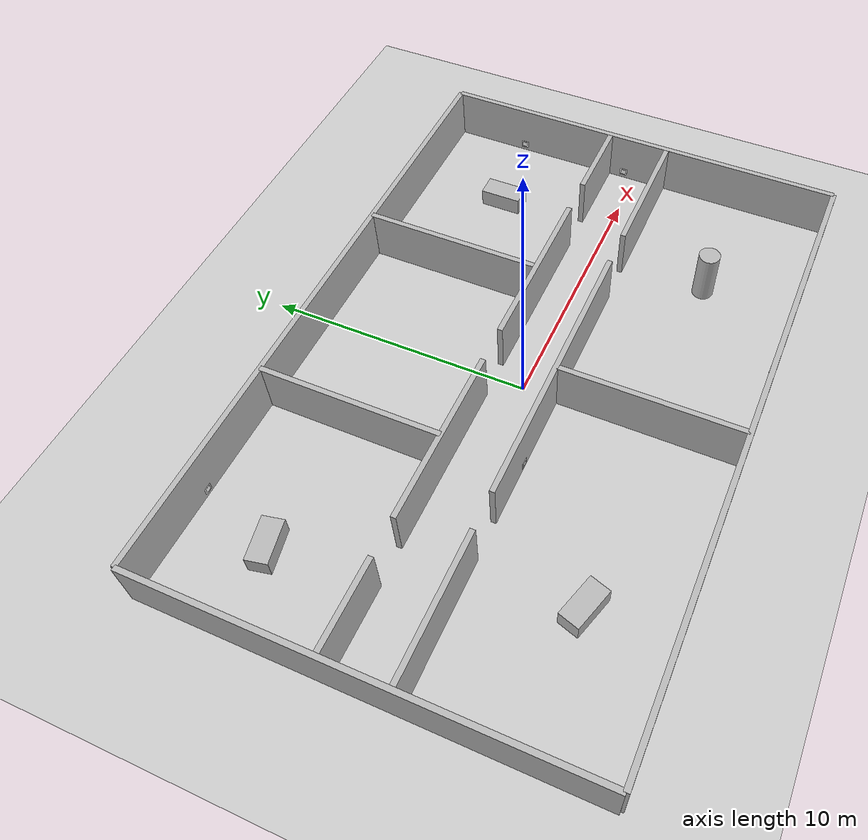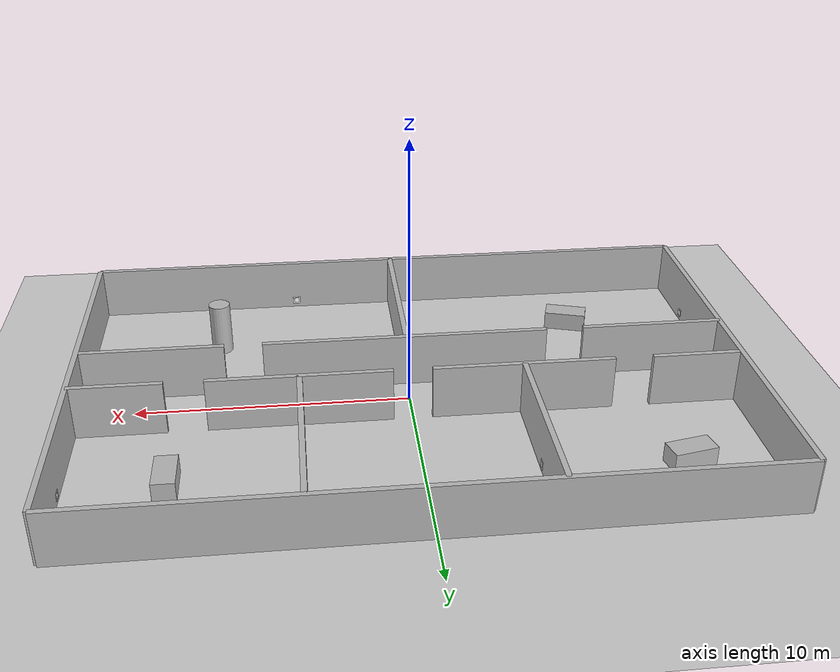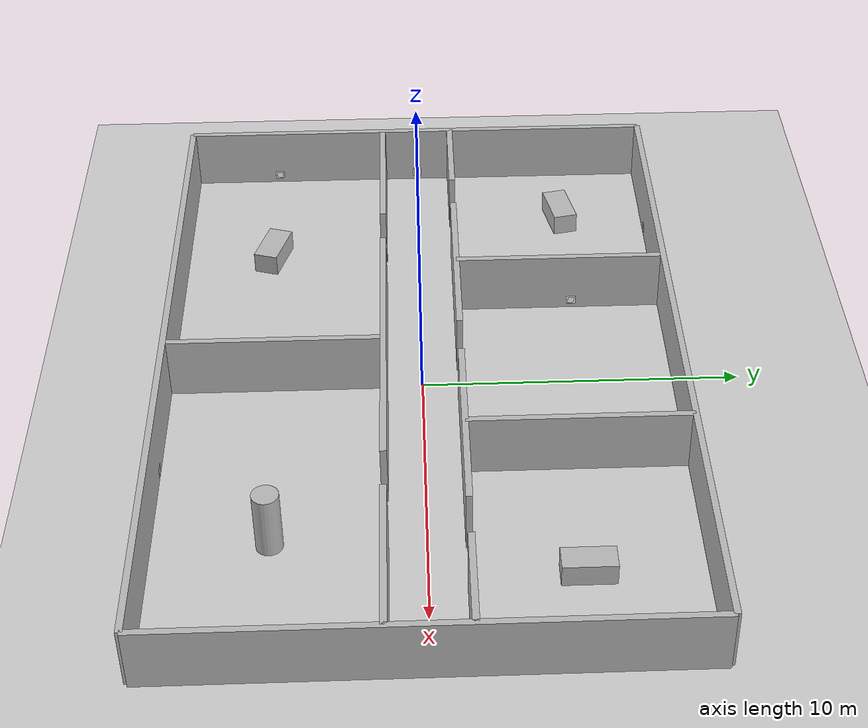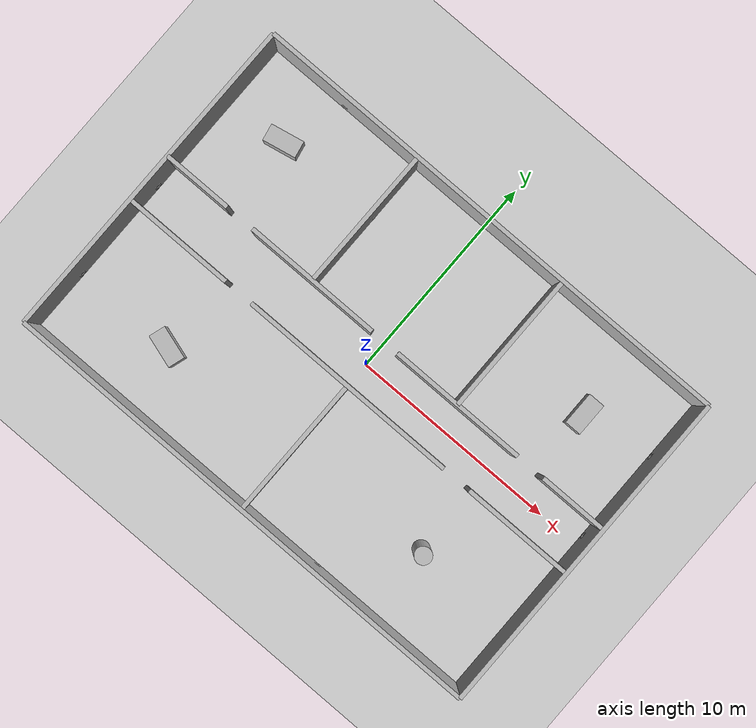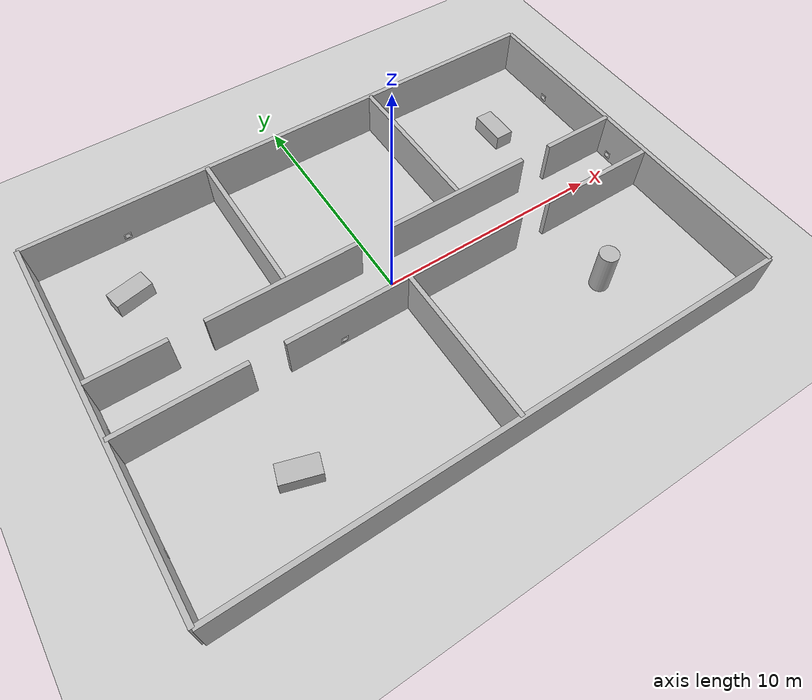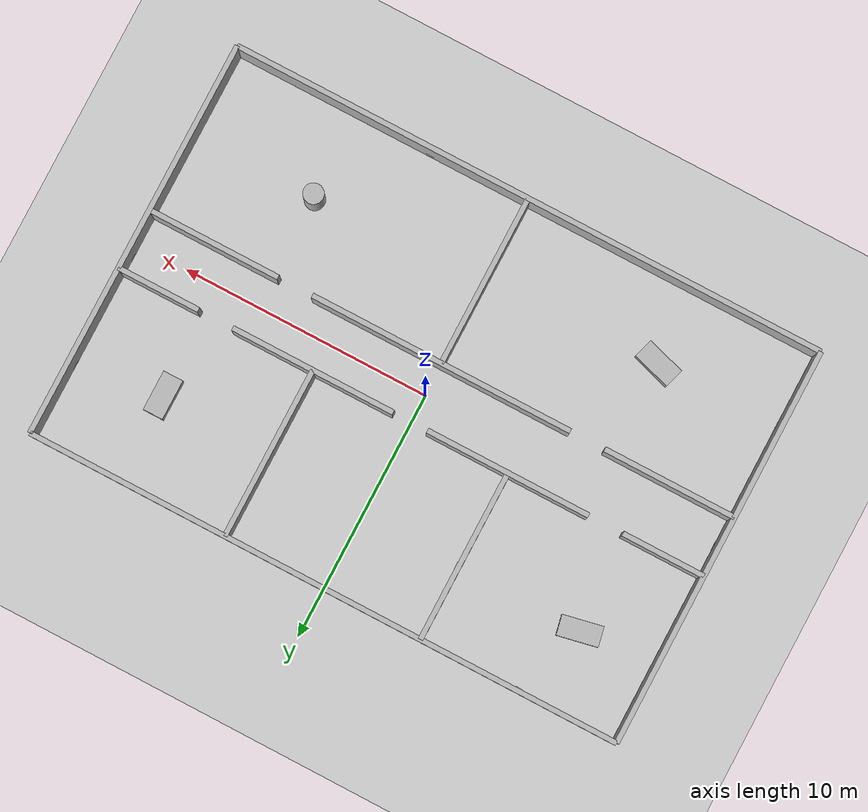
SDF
<?xml version="1.0" ?>
<sdf version="1.8">
  <world name="office_world">
    <physics name="1ms" type="dart">
      <max_step_size>0.001</max_step_size>
      <real_time_factor>1.0</real_time_factor>
    </physics>

    <plugin filename="gz-sim-physics-system"
            name="gz::sim::systems::Physics"/>
    <plugin filename="gz-sim-user-commands-system"
            name="gz::sim::systems::UserCommands"/>
    <plugin filename="gz-sim-scene-broadcaster-system"
            name="gz::sim::systems::SceneBroadcaster"/>
    <plugin filename="gz-sim-sensors-system"
            name="gz::sim::systems::Sensors">
      <render_engine>ogre2</render_engine>
    </plugin>

    <plugin filename="gz-sim-imu-system"
            name="gz::sim::systems::Imu"/>
    <light type="directional" name="sun">
      <cast_shadows>true</cast_shadows>
      <pose>0 0 10 0 0 0</pose>
      <diffuse>0.8 0.8 0.8 1</diffuse>
      <specular>0.2 0.2 0.2 1</specular>
      <direction>-0.5 0.1 -0.9</direction>
    </light>

    <model name="ground_plane">
      <static>true</static>
      <link name="link">
        <collision name="collision">
          <geometry><plane><normal>0 0 1</normal></plane></geometry>
        </collision>
        <visual name="visual">
          <geometry><plane><normal>0 0 1</normal><size>100 100</size></plane></geometry>
          <material>
            <ambient>0.8 0.8 0.8 1</ambient>
            <diffuse>0.8 0.8 0.8 1</diffuse>
          </material>
        </visual>
      </link>
    </model>

    <!-- Outer shell: 24 x 16 m -->
    <model name="wall_north">
      <static>true</static>
      <pose>0 8 1 0 0 0</pose>
      <link name="link">
        <collision name="collision"><geometry><box><size>24 0.2 2</size></box></geometry></collision>
        <visual name="visual"><geometry><box><size>24 0.2 2</size></box></geometry></visual>
      </link>
    </model>

    <model name="wall_south">
      <static>true</static>
      <pose>0 -8 1 0 0 0</pose>
      <link name="link">
        <collision name="collision"><geometry><box><size>24 0.2 2</size></box></geometry></collision>
        <visual name="visual"><geometry><box><size>24 0.2 2</size></box></geometry></visual>
      </link>
    </model>

    <model name="wall_east">
      <static>true</static>
      <pose>12 0 1 0 0 0</pose>
      <link name="link">
        <collision name="collision"><geometry><box><size>0.2 16 2</size></box></geometry></collision>
        <visual name="visual"><geometry><box><size>0.2 16 2</size></box></geometry></visual>
      </link>
    </model>

    <model name="wall_west">
      <static>true</static>
      <pose>-12 0 1 0 0 0</pose>
      <link name="link">
        <collision name="collision"><geometry><box><size>0.2 16 2</size></box></geometry></collision>
        <visual name="visual"><geometry><box><size>0.2 16 2</size></box></geometry></visual>
      </link>
    </model>

    <!-- Central corridor (y = -1.2 .. +1.2, robot spawns at the middle).
         North side: three offices, doorways (1.4 m) at x = -8, 0, +8.
         South side: two offices, doorways at x = -6, +6. -->
    <model name="corridor_n_seg1">
      <static>true</static>
      <pose>-10.35 1.2 1 0 0 0</pose>
      <link name="link">
        <collision name="collision"><geometry><box><size>3.3 0.2 2</size></box></geometry></collision>
        <visual name="visual"><geometry><box><size>3.3 0.2 2</size></box></geometry></visual>
      </link>
    </model>

    <model name="corridor_n_seg2">
      <static>true</static>
      <pose>-4 1.2 1 0 0 0</pose>
      <link name="link">
        <collision name="collision"><geometry><box><size>6.6 0.2 2</size></box></geometry></collision>
        <visual name="visual"><geometry><box><size>6.6 0.2 2</size></box></geometry></visual>
      </link>
    </model>

    <model name="corridor_n_seg3">
      <static>true</static>
      <pose>4 1.2 1 0 0 0</pose>
      <link name="link">
        <collision name="collision"><geometry><box><size>6.6 0.2 2</size></box></geometry></collision>
        <visual name="visual"><geometry><box><size>6.6 0.2 2</size></box></geometry></visual>
      </link>
    </model>

    <model name="corridor_n_seg4">
      <static>true</static>
      <pose>10.35 1.2 1 0 0 0</pose>
      <link name="link">
        <collision name="collision"><geometry><box><size>3.3 0.2 2</size></box></geometry></collision>
        <visual name="visual"><geometry><box><size>3.3 0.2 2</size></box></geometry></visual>
      </link>
    </model>

    <model name="corridor_s_seg1">
      <static>true</static>
      <pose>-9.35 -1.2 1 0 0 0</pose>
      <link name="link">
        <collision name="collision"><geometry><box><size>5.3 0.2 2</size></box></geometry></collision>
        <visual name="visual"><geometry><box><size>5.3 0.2 2</size></box></geometry></visual>
      </link>
    </model>

    <model name="corridor_s_seg2">
      <static>true</static>
      <pose>0 -1.2 1 0 0 0</pose>
      <link name="link">
        <collision name="collision"><geometry><box><size>10.6 0.2 2</size></box></geometry></collision>
        <visual name="visual"><geometry><box><size>10.6 0.2 2</size></box></geometry></visual>
      </link>
    </model>

    <model name="corridor_s_seg3">
      <static>true</static>
      <pose>9.35 -1.2 1 0 0 0</pose>
      <link name="link">
        <collision name="collision"><geometry><box><size>5.3 0.2 2</size></box></geometry></collision>
        <visual name="visual"><geometry><box><size>5.3 0.2 2</size></box></geometry></visual>
      </link>
    </model>

    <!-- Office partitions -->
    <model name="partition_north_w">
      <static>true</static>
      <pose>-4 4.6 1 0 0 0</pose>
      <link name="link">
        <collision name="collision"><geometry><box><size>0.2 6.8 2</size></box></geometry></collision>
        <visual name="visual"><geometry><box><size>0.2 6.8 2</size></box></geometry></visual>
      </link>
    </model>

    <model name="partition_north_e">
      <static>true</static>
      <pose>4 4.6 1 0 0 0</pose>
      <link name="link">
        <collision name="collision"><geometry><box><size>0.2 6.8 2</size></box></geometry></collision>
        <visual name="visual"><geometry><box><size>0.2 6.8 2</size></box></geometry></visual>
      </link>
    </model>

    <model name="partition_south">
      <static>true</static>
      <pose>0 -4.6 1 0 0 0</pose>
      <link name="link">
        <collision name="collision"><geometry><box><size>0.2 6.8 2</size></box></geometry></collision>
        <visual name="visual"><geometry><box><size>0.2 6.8 2</size></box></geometry></visual>
      </link>
    </model>

    <!-- Furniture -->
    <model name="desk_n1">
      <static>true</static>
      <pose>-9 5 0.35 0 0 0.2</pose>
      <link name="link">
        <collision name="collision"><geometry><box><size>1.6 0.8 0.7</size></box></geometry></collision>
        <visual name="visual"><geometry><box><size>1.6 0.8 0.7</size></box></geometry></visual>
      </link>
    </model>

    <model name="desk_n3">
      <static>true</static>
      <pose>8.5 4.5 0.35 0 0 0</pose>
      <link name="link">
        <collision name="collision"><geometry><box><size>0.8 1.6 0.7</size></box></geometry></collision>
        <visual name="visual"><geometry><box><size>0.8 1.6 0.7</size></box></geometry></visual>
      </link>
    </model>

    <model name="desk_s1">
      <static>true</static>
      <pose>-7 -5 0.35 0 0 -0.3</pose>
      <link name="link">
        <collision name="collision"><geometry><box><size>1.6 0.8 0.7</size></box></geometry></collision>
        <visual name="visual"><geometry><box><size>1.6 0.8 0.7</size></box></geometry></visual>
      </link>
    </model>

    <model name="pillar_s2">
      <static>true</static>
      <pose>7 -4.5 1 0 0 0</pose>
      <link name="link">
        <collision name="collision"><geometry><cylinder><radius>0.4</radius><length>2</length></cylinder></geometry></collision>
        <visual name="visual"><geometry><cylinder><radius>0.4</radius><length>2</length></cylinder></geometry></visual>
      </link>
    </model>

    <!-- Visual "ArUco" markers (poses mirror
         leo_rover_exploration/config/mock_markers_office_world.yaml) -->
    <model name="marker_1">
      <static>true</static>
      <pose>-11.88 0.0 0.3 0 0 0.0</pose>
      <link name="link">
        <visual name="board">
          <pose>-0.005 0 0 0 0 0</pose>
          <geometry><box><size>0.01 0.30 0.30</size></box></geometry>
          <material><ambient>1 1 1 1</ambient><diffuse>1 1 1 1</diffuse></material>
        </visual>
        <!-- The marker itself: 0.20 m black square, edge to edge. -->
        <visual name="visual">
          <geometry><box><size>0.01 0.20 0.20</size></box></geometry>
          <material>
            <ambient>1 1 1 1</ambient><diffuse>1 1 1 1</diffuse>
            <pbr><metal>
              <albedo_map>model://aruco_markers/textures/aruco_1_bare.png</albedo_map>
              <metalness>0.0</metalness><roughness>0.9</roughness>
            </metal></pbr>
          </material>
        </visual>
      </link>
    </model>
    <model name="marker_2">
      <static>true</static>
      <pose>11.88 0.5 0.3 0 0 3.1416</pose>
      <link name="link">
        <visual name="board">
          <pose>-0.005 0 0 0 0 0</pose>
          <geometry><box><size>0.01 0.30 0.30</size></box></geometry>
          <material><ambient>1 1 1 1</ambient><diffuse>1 1 1 1</diffuse></material>
        </visual>
        <!-- The marker itself: 0.20 m black square, edge to edge. -->
        <visual name="visual">
          <geometry><box><size>0.01 0.20 0.20</size></box></geometry>
          <material>
            <ambient>1 1 1 1</ambient><diffuse>1 1 1 1</diffuse>
            <pbr><metal>
              <albedo_map>model://aruco_markers/textures/aruco_2_bare.png</albedo_map>
              <metalness>0.0</metalness><roughness>0.9</roughness>
            </metal></pbr>
          </material>
        </visual>
      </link>
    </model>
    <model name="marker_3">
      <static>true</static>
      <pose>-8.0 7.88 0.3 0 0 -1.5708</pose>
      <link name="link">
        <visual name="board">
          <pose>-0.005 0 0 0 0 0</pose>
          <geometry><box><size>0.01 0.30 0.30</size></box></geometry>
          <material><ambient>1 1 1 1</ambient><diffuse>1 1 1 1</diffuse></material>
        </visual>
        <!-- The marker itself: 0.20 m black square, edge to edge. -->
        <visual name="visual">
          <geometry><box><size>0.01 0.20 0.20</size></box></geometry>
          <material>
            <ambient>1 1 1 1</ambient><diffuse>1 1 1 1</diffuse>
            <pbr><metal>
              <albedo_map>model://aruco_markers/textures/aruco_3_bare.png</albedo_map>
              <metalness>0.0</metalness><roughness>0.9</roughness>
            </metal></pbr>
          </material>
        </visual>
      </link>
    </model>
    <model name="marker_4">
      <static>true</static>
      <pose>-3.88 5.0 0.3 0 0 0.0</pose>
      <link name="link">
        <visual name="board">
          <pose>-0.005 0 0 0 0 0</pose>
          <geometry><box><size>0.01 0.30 0.30</size></box></geometry>
          <material><ambient>1 1 1 1</ambient><diffuse>1 1 1 1</diffuse></material>
        </visual>
        <!-- The marker itself: 0.20 m black square, edge to edge. -->
        <visual name="visual">
          <geometry><box><size>0.01 0.20 0.20</size></box></geometry>
          <material>
            <ambient>1 1 1 1</ambient><diffuse>1 1 1 1</diffuse>
            <pbr><metal>
              <albedo_map>model://aruco_markers/textures/aruco_4_bare.png</albedo_map>
              <metalness>0.0</metalness><roughness>0.9</roughness>
            </metal></pbr>
          </material>
        </visual>
      </link>
    </model>
    <model name="marker_5">
      <static>true</static>
      <pose>11.88 5.0 0.3 0 0 3.1416</pose>
      <link name="link">
        <visual name="board">
          <pose>-0.005 0 0 0 0 0</pose>
          <geometry><box><size>0.01 0.30 0.30</size></box></geometry>
          <material><ambient>1 1 1 1</ambient><diffuse>1 1 1 1</diffuse></material>
        </visual>
        <!-- The marker itself: 0.20 m black square, edge to edge. -->
        <visual name="visual">
          <geometry><box><size>0.01 0.20 0.20</size></box></geometry>
          <material>
            <ambient>1 1 1 1</ambient><diffuse>1 1 1 1</diffuse>
            <pbr><metal>
              <albedo_map>model://aruco_markers/textures/aruco_5_bare.png</albedo_map>
              <metalness>0.0</metalness><roughness>0.9</roughness>
            </metal></pbr>
          </material>
        </visual>
      </link>
    </model>
    <model name="marker_6">
      <static>true</static>
      <pose>-11.88 -5.0 0.3 0 0 0.0</pose>
      <link name="link">
        <visual name="board">
          <pose>-0.005 0 0 0 0 0</pose>
          <geometry><box><size>0.01 0.30 0.30</size></box></geometry>
          <material><ambient>1 1 1 1</ambient><diffuse>1 1 1 1</diffuse></material>
        </visual>
        <!-- The marker itself: 0.20 m black square, edge to edge. -->
        <visual name="visual">
          <geometry><box><size>0.01 0.20 0.20</size></box></geometry>
          <material>
            <ambient>1 1 1 1</ambient><diffuse>1 1 1 1</diffuse>
            <pbr><metal>
              <albedo_map>model://aruco_markers/textures/aruco_6_bare.png</albedo_map>
              <metalness>0.0</metalness><roughness>0.9</roughness>
            </metal></pbr>
          </material>
        </visual>
      </link>
    </model>
    <model name="marker_7">
      <static>true</static>
      <pose>4.0 -7.88 0.3 0 0 1.5708</pose>
      <link name="link">
        <visual name="board">
          <pose>-0.005 0 0 0 0 0</pose>
          <geometry><box><size>0.01 0.30 0.30</size></box></geometry>
          <material><ambient>1 1 1 1</ambient><diffuse>1 1 1 1</diffuse></material>
        </visual>
        <!-- The marker itself: 0.20 m black square, edge to edge. -->
        <visual name="visual">
          <geometry><box><size>0.01 0.20 0.20</size></box></geometry>
          <material>
            <ambient>1 1 1 1</ambient><diffuse>1 1 1 1</diffuse>
            <pbr><metal>
              <albedo_map>model://aruco_markers/textures/aruco_7_bare.png</albedo_map>
              <metalness>0.0</metalness><roughness>0.9</roughness>
            </metal></pbr>
          </material>
        </visual>
      </link>
    </model>
    <model name="marker_8">
      <static>true</static>
      <pose>-3.0 -1.32 0.3 0 0 -1.5708</pose>
      <link name="link">
        <visual name="board">
          <pose>-0.005 0 0 0 0 0</pose>
          <geometry><box><size>0.01 0.30 0.30</size></box></geometry>
          <material><ambient>1 1 1 1</ambient><diffuse>1 1 1 1</diffuse></material>
        </visual>
        <!-- The marker itself: 0.20 m black square, edge to edge. -->
        <visual name="visual">
          <geometry><box><size>0.01 0.20 0.20</size></box></geometry>
          <material>
            <ambient>1 1 1 1</ambient><diffuse>1 1 1 1</diffuse>
            <pbr><metal>
              <albedo_map>model://aruco_markers/textures/aruco_8_bare.png</albedo_map>
              <metalness>0.0</metalness><roughness>0.9</roughness>
            </metal></pbr>
          </material>
        </visual>
      </link>
    </model>

  </world>
</sdf>
